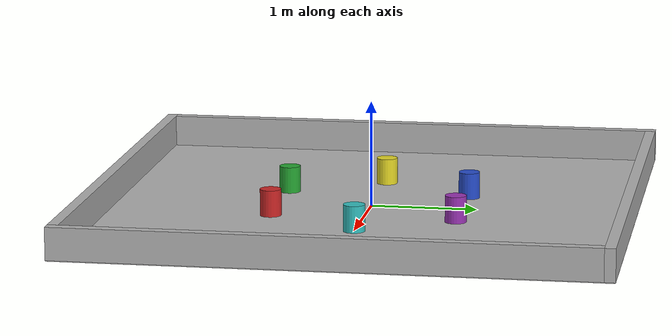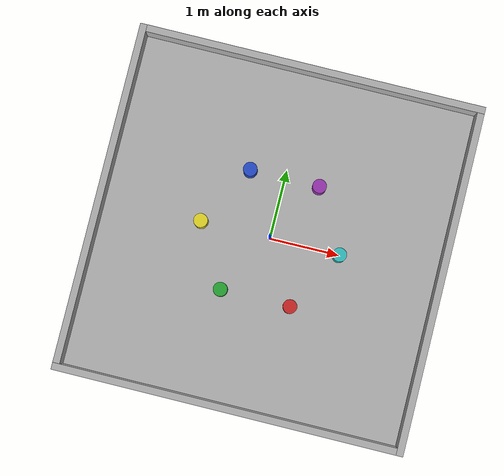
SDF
<?xml version="1.0"?>
<sdf version="1.6">
  <world name="default">

    <plugin
      filename="gz-sim-physics-system"
      name="gz::sim::systems::Physics">
    </plugin>
    <plugin
      filename="gz-sim-user-commands-system"
      name="gz::sim::systems::UserCommands">
    </plugin>
    <plugin
      filename="gz-sim-scene-broadcaster-system"
      name="gz::sim::systems::SceneBroadcaster">
    </plugin>
    <plugin
      filename="gz-sim-sensors-system"
      name="gz::sim::systems::Sensors">
      <render_engine>ogre2</render_engine>
    </plugin>
    <plugin
      filename="gz-sim-imu-system"
      name="gz::sim::systems::Imu">
    </plugin>

    <include>
      <uri>model://beacon_colours_floor</uri>
    </include>

    <include>
      <uri>https://fuel.gazebosim.org/1.0/OpenRobotics/models/Sun</uri>
    </include>

    <scene>
      <shadows>false</shadows>
    </scene>

    <physics type="ode">
      <real_time_update_rate>1000.0</real_time_update_rate>
      <max_step_size>0.001</max_step_size>
      <real_time_factor>1</real_time_factor>
      <ode>
        <solver>
          <type>quick</type>
          <iters>150</iters>
          <precon_iters>0</precon_iters>
          <sor>1.400000</sor>
          <use_dynamic_moi_rescaling>1</use_dynamic_moi_rescaling>
        </solver>
        <constraints>
          <cfm>0.00001</cfm>
          <erp>0.2</erp>
          <contact_max_correcting_vel>2000.000000</contact_max_correcting_vel>
          <contact_surface_layer>0.01000</contact_surface_layer>
        </constraints>
      </ode>
    </physics>

    <include>
      <uri>model://arena_walls</uri>
    </include>

    <include>
      <uri>model://beacon_green</uri>
      <pose>-0.5 -0.866 0 0 0 0</pose>
    </include>

    <include>
      <uri>model://beacon_blue</uri>
      <pose>-0.5 0.866 0 0 0 0</pose>
    </include>

    <include>
      <uri>model://beacon_red</uri>
      <pose>0.5 -0.866 0 0 0 0</pose>
    </include>

    <include>
      <uri>model://beacon_yellow</uri>
      <pose>-1 0 0 0 0 0</pose>
    </include>

    <include>
      <uri>model://beacon_purple</uri>
      <pose>0.5 0.866 0 0 0 0</pose>
    </include>

    <include>
      <uri>model://beacon_turquoise</uri>
      <pose>1 0 0 0 0 0</pose>
    </include>

  </world>
</sdf>

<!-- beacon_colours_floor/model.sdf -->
<sdf version="1.4">
<model name="beacon_colours_floor">
  <static>true</static>
    <link name="floor">
      <collision name="collision">
        <geometry>
          <plane>
            <normal>0 0 1</normal>
            <size>5.0 5.0</size>
          </plane>
        </geometry>
        <surface>
          <friction>
            <ode>
              <mu>100</mu>
              <mu2>50</mu2>
            </ode>
          </friction>
        </surface>
      </collision>
      <visual name="visual">
        <cast_shadows>false</cast_shadows>
        <geometry>
          <plane>
            <normal>0 0 1</normal>
            <size>5.0 5.0</size>
          </plane>
        </geometry>
        <material>
          <diffuse>0.7 0.7 0.7 1</diffuse>
          <pbr>
            <metal>
              <albedo_map>materials/textures/floor.png</albedo_map>
              <metalness>0.0</metalness>
              <roughness>0.5</roughness>
            </metal>
          </pbr>
        </material>
      </visual>
    </link>
  </model>
</sdf>

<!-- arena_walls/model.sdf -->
<sdf version='1.6'>
  <model name='arena_walls'>
    <pose frame=''>0 0 0.15 0 0 0</pose>
    <link name='Right_Wall'>
      <collision name='Right_Wall_Collision'>
        <geometry>
          <box>
            <size>4.90 0.10 0.3</size>
          </box>
        </geometry>
        <pose frame=''>0 0 0 0 0 0</pose>
      </collision>
      <visual name='Right_Wall_Visual'>
        <pose frame=''>0 0 0 0 0 0</pose>
        <geometry>
          <box>
            <size>4.90 0.10 0.3</size>
          </box>
        </geometry>
        <material>
          <diffuse>0.7 0.7 0.7 1</diffuse>
          <pbr>
            <metal>
              <metalness>0.0</metalness>
              <roughness>0.9</roughness>
            </metal>
          </pbr>
        </material>
      </visual>
      <pose frame=''>0.05 2.45 0 0 0 0</pose>
    </link>
    <link name='Back_Wall'>
      <collision name='Back_Wall_Collision'>
        <geometry>
          <box>
            <size>4.90 0.10 0.3</size>
          </box>
        </geometry>
        <pose frame=''>0 0 0 0 0 0</pose>
      </collision>
      <visual name='Back_Wall_Visual'>
        <pose frame=''>0 0 0 0 0 0</pose>
        <geometry>
          <box>
            <size>4.90 0.10 0.3</size>
          </box>
        </geometry>
        <material>
          <diffuse>0.7 0.7 0.7 1</diffuse>
          <pbr>
            <metal>
              <metalness>0.0</metalness>
              <roughness>0.9</roughness>
            </metal>
          </pbr>
        </material>
      </visual>
      <pose frame=''>-2.45 0.05 0 0 0 1.5708</pose>
    </link>
    <link name='Left_Wall'>
      <collision name='Left_Wall_Collision'>
        <geometry>
          <box>
            <size>4.90 0.10 0.3</size>
          </box>
        </geometry>
        <pose frame=''>0 0 0 0 0 0</pose>
      </collision>
      <visual name='Left_Wall_Visual'>
        <pose frame=''>0 0 0 0 0 0</pose>
        <geometry>
          <box>
            <size>4.90 0.10 0.3</size>
          </box>
        </geometry>
        <material>
          <diffuse>0.7 0.7 0.7 1</diffuse>
          <pbr>
            <metal>
              <metalness>0.0</metalness>
              <roughness>0.9</roughness>
            </metal>
          </pbr>
        </material>
      </visual>
      <pose frame=''>-0.05 -2.45 0 0 0 0</pose>
    </link>
    <link name='Front_Wall'>
      <collision name='Front_Wall_Collision'>
        <geometry>
          <box>
            <size>4.90 0.10 0.3</size>
          </box>
        </geometry>
        <pose frame=''>0 0 0 0 0 0</pose>
      </collision>
      <visual name='Front_Wall_Visual'>
        <pose frame=''>0 0 0 0 0 0</pose>
        <geometry>
          <box>
            <size>4.90 0.10 0.3</size>
          </box>
        </geometry>
        <material>
          <diffuse>0.7 0.7 0.7 1</diffuse>
          <pbr>
            <metal>
              <metalness>0.0</metalness>
              <roughness>0.9</roughness>
            </metal>
          </pbr>
        </material>
      </visual>
      <pose frame=''>2.45 -0.05 0 0 0 1.5708</pose>
    </link>
    <static>1</static>
  </model>
</sdf>

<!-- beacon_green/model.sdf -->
<sdf version="1.4">
<model name="beacon_green">
  <static>false</static>
  <link name='beacon_green'>
    <pose frame=''>0 0 0.125 0 0 0</pose>
    <collision name='coll'>
      <geometry>
        <cylinder>
          <radius>0.1</radius>
          <length>0.25</length>
        </cylinder>
      </geometry>
      <max_contacts>10</max_contacts>
    </collision>
    <visual name='vis'>
      <geometry>
        <cylinder>
          <radius>0.1</radius>
          <length>0.25</length>
        </cylinder>
      </geometry>
      <material>
        <script>
          <uri>file://media/materials/scripts/gazebo.material</uri>
          <name>Gazebo/Green</name>
        </script>
      </material>
    </visual>
  </link>
  </model>
</sdf>

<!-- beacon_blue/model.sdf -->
<sdf version="1.4">
<model name="beacon_blue">
  <static>false</static>
  <link name='beacon_blue'>
    <pose frame=''>0 0 0.125 0 0 0</pose>
    <collision name='coll'>
      <geometry>
        <cylinder>
          <radius>0.1</radius>
          <length>0.25</length>
        </cylinder>
      </geometry>
      <max_contacts>10</max_contacts>
    </collision>
    <visual name='vis'>
      <geometry>
        <cylinder>
          <radius>0.1</radius>
          <length>0.25</length>
        </cylinder>
      </geometry>
      <material>
        <script>
          <uri>file://media/materials/scripts/gazebo.material</uri>
          <name>Gazebo/Blue</name>
        </script>
      </material>
    </visual>
  </link>
  </model>
</sdf>

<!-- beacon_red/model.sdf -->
<sdf version="1.4">
<model name="beacon_red">
  <static>false</static>
  <link name='beacon_red'>
    <pose frame=''>0 0 0.125 0 0 0</pose>
    <collision name='coll'>
      <geometry>
        <cylinder>
          <radius>0.1</radius>
          <length>0.25</length>
        </cylinder>
      </geometry>
      <max_contacts>10</max_contacts>
    </collision>
    <visual name='vis'>
      <geometry>
        <cylinder>
          <radius>0.1</radius>
          <length>0.25</length>
        </cylinder>
      </geometry>
      <material>
        <script>
          <uri>file://media/materials/scripts/gazebo.material</uri>
          <name>Gazebo/Red</name>
        </script>
      </material>
    </visual>
  </link>
  </model>
</sdf>

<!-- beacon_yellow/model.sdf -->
<sdf version="1.4">
<model name="beacon_yellow">
  <static>false</static>
  <link name='beacon_yellow'>
    <pose frame=''>0 0 0.125 0 0 0</pose>
    <collision name='coll'>
      <geometry>
        <cylinder>
          <radius>0.1</radius>
          <length>0.25</length>
        </cylinder>
      </geometry>
      <max_contacts>10</max_contacts>
    </collision>
    <visual name='vis'>
      <geometry>
        <cylinder>
          <radius>0.1</radius>
          <length>0.25</length>
        </cylinder>
      </geometry>
      <material>
        <script>
          <uri>file://media/materials/scripts/gazebo.material</uri>
          <name>Gazebo/Yellow</name>
        </script>
      </material>
    </visual>
  </link>
  </model>
</sdf>

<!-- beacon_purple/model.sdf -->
<sdf version="1.4">
<model name="beacon_purple">
  <static>false</static>
  <link name='beacon_purple'>
    <pose frame=''>0 0 0.125 0 0 0</pose>
    <collision name='coll'>
      <geometry>
        <cylinder>
          <radius>0.1</radius>
          <length>0.25</length>
        </cylinder>
      </geometry>
      <max_contacts>10</max_contacts>
    </collision>
    <visual name='vis'>
      <geometry>
        <cylinder>
          <radius>0.1</radius>
          <length>0.25</length>
        </cylinder>
      </geometry>
      <material>
        <script>
          <uri>file://media/materials/scripts/gazebo.material</uri>
          <name>Gazebo/Purple</name>
        </script>
      </material>
    </visual>
  </link>
  </model>
</sdf>

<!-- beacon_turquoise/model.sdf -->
<sdf version="1.4">
<model name="beacon_turquoise">
  <static>false</static>
  <link name='beacon_turquoise'>
    <pose frame=''>0 0 0.125 0 0 0</pose>
    <collision name='coll'>
      <geometry>
        <cylinder>
          <radius>0.1</radius>
          <length>0.25</length>
        </cylinder>
      </geometry>
      <max_contacts>10</max_contacts>
    </collision>
    <visual name='vis'>
      <geometry>
        <cylinder>
          <radius>0.1</radius>
          <length>0.25</length>
        </cylinder>
      </geometry>
      <material>
        <script>
          <uri>file://media/materials/scripts/gazebo.material</uri>
          <name>Gazebo/Turquoise</name>
        </script>
      </material>
    </visual>
  </link>
  </model>
</sdf>
